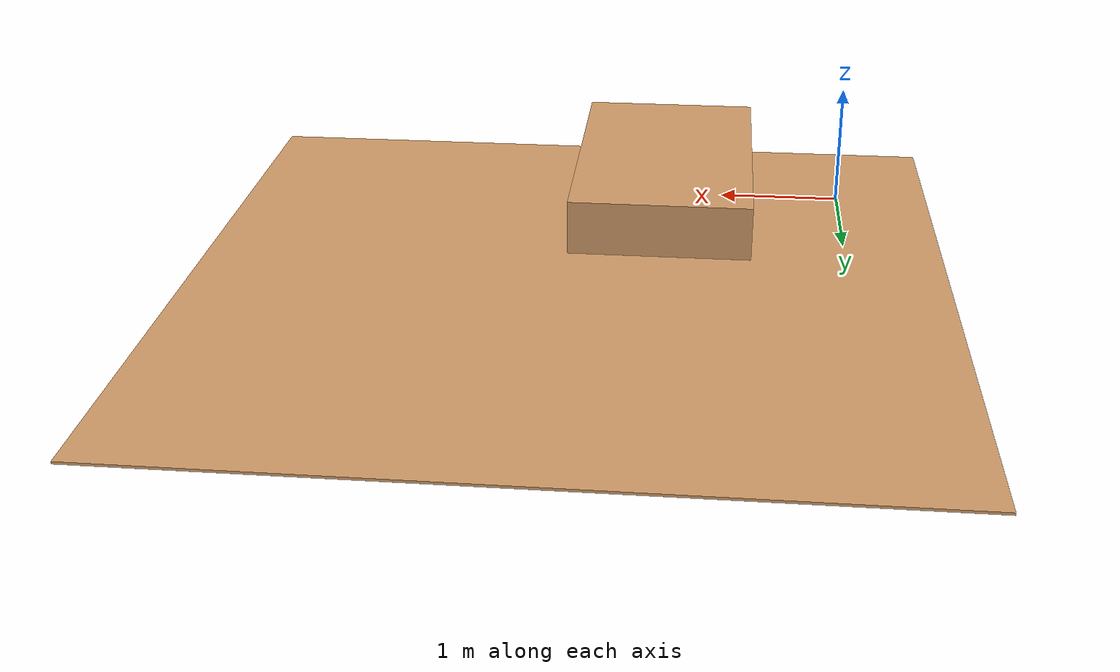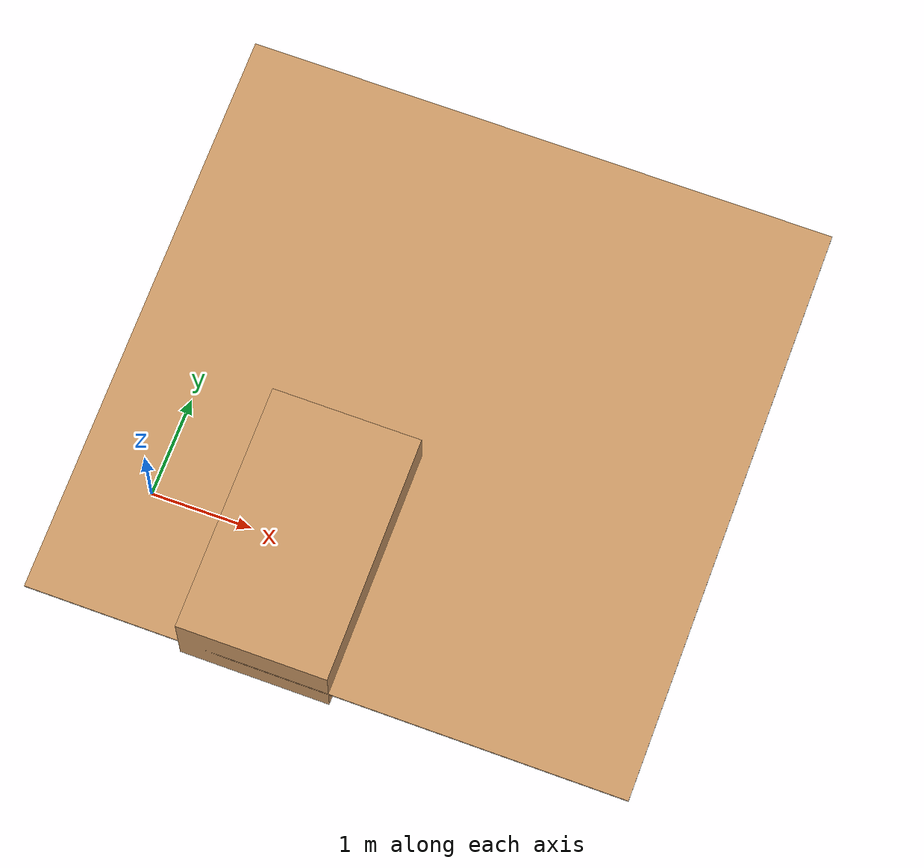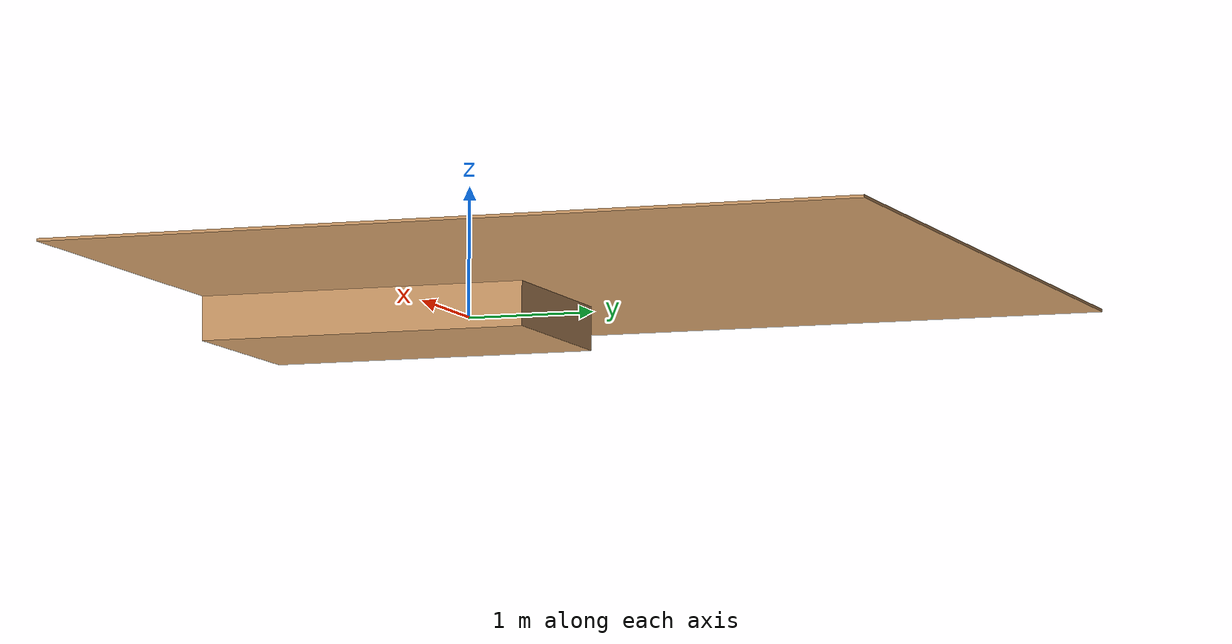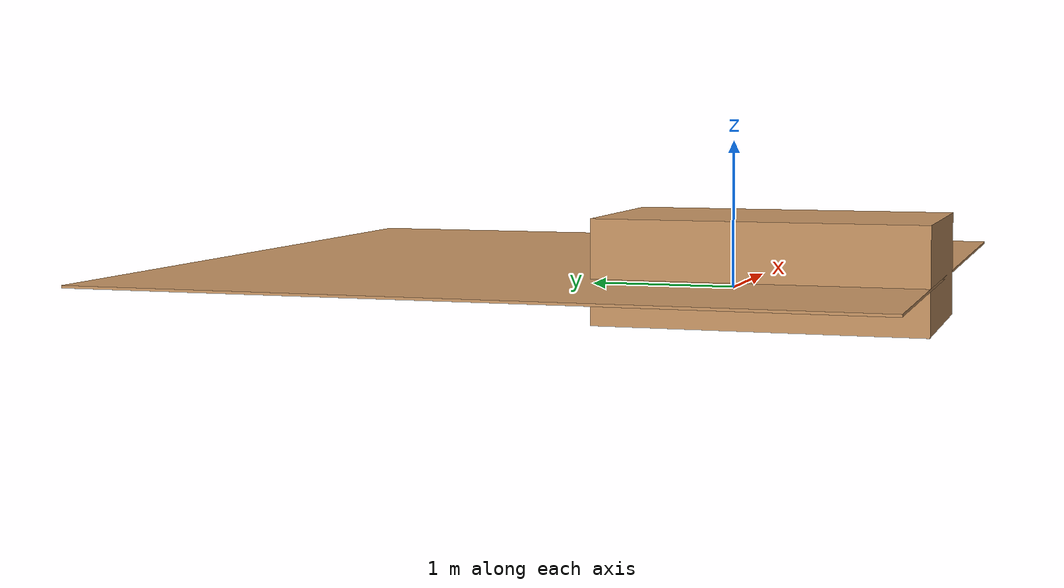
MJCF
<mujoco model="high_platform">
  <asset>
    <mesh name="high_platform_mesh0" file="meshs/high_platform_mesh0.stl"/>
    <mesh name="high_platform_mesh1" file="meshs/high_platform_mesh1.stl"/>
  </asset>
  <worldbody>
    <geom type="mesh" mesh="high_platform_mesh0" rgba="0.8 0.6 0.4 1" pos="-0.8 -1.25 -0.05" contype="1" conaffinity="1" group="1"/>
    <geom type="mesh" mesh="high_platform_mesh1" rgba="0.8 0.6 0.4 1" pos="-0.8 -1.25 -0.05" contype="1" conaffinity="1" group="1"/>
  </worldbody>
  <custom>
    <text name="terrain:high_platform" data="difficulty:0.0"/>
  </custom>
</mujoco>
